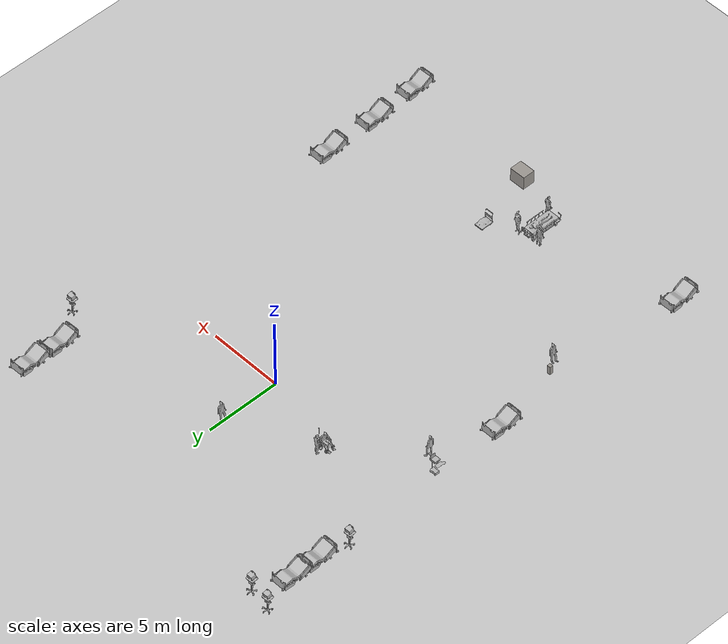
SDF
<sdf version="1.6">
 <world name="default">
  <plugin filename="gz-sim-physics-system" name="gz::sim::systems::Physics"/>
  <plugin filename="gz-sim-user-commands-system" name="gz::sim::systems::UserCommands"/>
  <plugin filename="gz-sim-scene-broadcaster-system" name="gz::sim::systems::SceneBroadcaster"/>
  <plugin filename="gz-sim-contact-system" name="gz::sim::systems::Contact"/>
  <plugin filename="gz-sim-sensors-system" name="gz::sim::systems::Sensors">
   <render_engine>ogre</render_engine>
  </plugin>
  <gravity>0 0 -9.8</gravity>
  <physics default="0" name="default_physics" type="ode">
   <max_step_size>0.001</max_step_size>
   <real_time_factor>1</real_time_factor>
   <real_time_update_rate>1000</real_time_update_rate>
  </physics>
  <scene>
   <ambient>0.6 0.6 0.6 1</ambient>
   <background>0.4 0.4 0.4 1</background>
   <shadows>false</shadows>
   <grid>false</grid>
   <origin_visual>false</origin_visual>
  </scene>
  <include><uri>model://sun</uri></include>
  <include><uri>model://ground_plane</uri><pose>0 0 -0.1 0 -0 0</pose></include>
  <model name="CGMClassic_1">
   <include>
    <uri>model://CGMClassic</uri>
    <static>true</static>
    <pose>11.1777 -18.4129 0 0 0 -3.13719</pose>
   </include>
  </model>
  <model name="CGMClassic_2">
   <include>
    <uri>model://CGMClassic</uri>
    <static>true</static>
    <pose>11.1179 -14.6493 0 0 0 -3.13599</pose>
   </include>
  </model>
  <model name="Scrubs_1">
   <include><uri>model://Scrubs</uri><static>true</static><pose>-9.61916 -12.5112 0 0 0 -3.12353</pose></include>
  </model>
  <model name="Scrubs_2">
   <include><uri>model://Scrubs</uri><static>true</static><pose>0.054597 4.05849 0 0 -0 3.12413</pose></include>
  </model>
  <model name="PatientWheelChair_1">
   <include>
    <uri>model://PatientWheelChair</uri>
    <static>true</static>
    <pose>-5.46091 1.23577 0 0 0 -1.54828</pose>
   </include>
  </model>
  <model name="Scrubs_3">
   <include><uri>model://Scrubs</uri><static>true</static><pose>-5.38513 1.82526 0 0 0 -1.63757</pose></include>
  </model>
  <model name="CGMClassic_3">
   <include>
    <uri>model://CGMClassic</uri>
    <static>true</static>
    <pose>-11.2304 -21.1134 0 0 0 -3.11834</pose>
   </include>
  </model>
  <model name="CGMClassic_4">
   <include>
    <uri>model://CGMClassic</uri>
    <static>true</static>
    <pose>-11.0878 -7.00992 0 0 -0 3.1351</pose>
   </include>
  </model>
  <model name="CGMClassic_5">
   <include>
    <uri>model://CGMClassic</uri>
    <static>true</static>
    <pose>-11.0106 8.9505 -0.008203 -0.035019 -0.000392 3.13388</pose>
   </include>
  </model>
  <model name="CGMClassic_6">
   <include>
    <uri>model://CGMClassic</uri>
    <static>true</static>
    <pose>-11.025 7.10335 0 -0.035021 1.8e-05 -3.13762</pose>
   </include>
  </model>
  <model name="TrolleyBedPatient_1">
   <include>
    <uri>model://TrolleyBedPatient</uri>
    <static>true</static>
    <pose>-1.83202 -19.2612 0 0 -0 0</pose>
   </include>
  </model>
  <model name="Scrubs_4">
   <include><uri>model://Scrubs</uri><static>true</static><pose>-0.93616 -18.2252 0 0 -0 1.62572</pose></include>
  </model>
  <model name="Scrubs_5">
   <include>
    <uri>model://Scrubs</uri>
    <static>true</static>
    <pose>-2.66657 -18.3733 0 -0.002221 -0.006608 -1.24025</pose>
   </include>
  </model>
  <model name="CGMClassic_7">
   <include>
    <uri>model://CGMClassic</uri>
    <static>true</static>
    <pose>10.6166 9.06291 -0.008203 -0.03501 0.000885 -3.11285</pose>
   </include>
  </model>
  <model name="CGMClassic_8">
   <include>
    <uri>model://CGMClassic</uri>
    <static>true</static>
    <pose>10.6006 6.90956 -0.008203 -0.035003 0.001133 -3.10576</pose>
   </include>
  </model>
  <model name="ParkingTrolleyMin_1">
   <include>
    <uri>model://ParkingTrolleyMin</uri>
    <static>true</static>
    <pose>0.715846 -17.1496 -0.000121 -1e-06 -0 0</pose>
   </include>
  </model>
  <model name="Scrubs_6">
   <include><uri>model://Scrubs</uri><static>true</static><pose>-1.29468 -20.4093 0 0 0 -1.51066</pose></include>
  </model>
  <model name="CGMClassic_9">
   <include>
    <uri>model://CGMClassic</uri>
    <static>true</static>
    <pose>11.3613 -21.8867 0 0 0 -3.12292</pose>
   </include>
  </model>
  <model name="XRayMachine_1">
   <include><uri>model://XRayMachine</uri><static>true</static><pose>1.79424 -21.3329 0 0 -0 0</pose></include>
  </model>
  <model name="BloodPressureMonitor_1">
   <include>
    <uri>model://BloodPressureMonitor</uri>
    <static>true</static>
    <pose>-9.96258 -11.9361 0 0 -0 0</pose>
   </include>
  </model>
  <model name="BMWCart_1">
   <include><uri>model://BMWCart</uri><static>true</static><pose>-10.931 -1.9483 0 0 -0 0</pose></include>
  </model>
  <model name="Scrubs_7">
   <include><uri>model://Scrubs</uri><static>true</static><pose>-9.75875 -2.67552 0 0 -0 0</pose></include>
  </model>
  <model name="BPCart_1">
   <include>
    <uri>model://BPCart</uri>
    <static>true</static>
    <pose>-10.1788 11.173 0.003446 1e-06 -0 0.003096</pose>
   </include>
  </model>
  <model name="BPCart_2">
   <include><uri>model://BPCart</uri><static>true</static><pose>12.0072 4.64765 0 0 -0 0</pose></include>
  </model>
  <model name="BPCart_3">
   <include><uri>model://BPCart</uri><static>true</static><pose>-11.7236 11.4294 0 0 -0 0</pose></include>
  </model>
  <model name="BPCart_4">
   <include>
    <uri>model://BPCart</uri>
    <static>true</static>
    <pose>-11.4703 5.05999 0.003446 1e-06 -0 0.003096</pose>
   </include>
  </model>
 </world>
</sdf>

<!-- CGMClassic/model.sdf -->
<sdf version="1.6">
  <model name="CGMClassic">
   <static>true</static>
    <link name="body">
      <pose>0 0 0 0 0 0</pose>

      <visual name="visual">
        <geometry>
          <mesh>
            <uri>model://CGMClassic/meshes/CGMClassic.obj</uri>
            <scale>0.01 0.01 0.01</scale>
          </mesh>
        </geometry>
      </visual>

      <collision name="collision">
        <geometry>
          <mesh>
            <uri>model://CGMClassic/meshes/CGMClassic.obj</uri>
            <scale>0.01 0.01 0.01</scale>
          </mesh>
        </geometry>
      </collision>

    </link>
  </model>
</sdf>

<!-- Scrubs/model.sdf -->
<sdf version="1.6">
  <model name='Scrubs'>
   <static>true</static>
    <link name="body">
      <pose>0 0 0 0 0 0</pose>

      <visual name="visual">
        <geometry>
          <mesh>
            <uri>model://Scrubs/meshes/scrubs.obj</uri>
          </mesh>
        </geometry>
      </visual>

      <collision name="collision">
        <geometry>
          <mesh>
            <uri>model://Scrubs/meshes/Scrubs_Col.obj</uri>
          </mesh>
        </geometry>
      </collision>

    </link>
  </model>
</sdf>

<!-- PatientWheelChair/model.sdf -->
<sdf version="1.6">
  <model name="PatientWheelChair">
   <static>true</static>
    <link name="body">
      <pose>0 0 0 0 0 0</pose>

      <visual name="visual">
        <geometry>
          <mesh>
            <uri>model://PatientWheelChair/meshes/PatientWheelChair.obj</uri>
          </mesh>
        </geometry>
      </visual>

      <collision name="collision">
        <geometry>
          <mesh>
            <uri>model://PatientWheelChair/meshes/PatientWheelChair_Col.obj</uri>
          </mesh>
        </geometry>
      </collision>

    </link>
  </model>
</sdf>

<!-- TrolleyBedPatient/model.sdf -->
<sdf version="1.6">
  <model name="TrolleyBedPatient">
   <static>true</static>
    <link name="body">
      <pose>0 0 0 0 0 0</pose>

      <visual name="visual">
        <geometry>
          <mesh>
            <uri>model://TrolleyBedPatient/meshes/TrolleyBedPatient.obj</uri>
          </mesh>
        </geometry>
      </visual>

      <collision name="collision">
        <geometry>
          <mesh>
            <uri>model://TrolleyBedPatient/meshes/TrolleyBedPatient.obj</uri>
          </mesh>
        </geometry>
      </collision>

    </link>
  </model>
</sdf>

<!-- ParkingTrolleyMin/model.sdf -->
<sdf version="1.6">
  <model name="ParkingTrolleyMin">
    <link name="body">
      <pose>0 0 0 0 0 0</pose>

        <visual name="visual">
          <pose>0 0 0 0 0 0</pose>
          <geometry>
            <mesh><uri>model://ParkingTrolleyMin/meshes/trolleymin.obj</uri></mesh>
          </geometry>
        </visual>

        <collision name="collision">
          <pose>0 0 0 0 0 0</pose>
          <geometry>
            <mesh><uri>model://ParkingTrolleyMin/meshes/trolleymin.obj</uri></mesh>
          </geometry>
        </collision>

    </link>
  </model>
</sdf>

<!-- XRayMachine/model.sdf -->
<sdf version="1.6">
  <model name="XRayMachine">
    <static>true</static>
    <link name="link">
      <collision name="col">
        <geometry>
          <box>
            <size>1.1 0.85 1.65</size>
          </box>
        </geometry>
      </collision>
      <visual name="vis">
        <geometry>
          <box>
            <size>1.1 0.85 1.65</size>
          </box>
        </geometry>
        <material>
          <ambient>0.62 0.6 0.58 1</ambient>
          <diffuse>0.62 0.6 0.58 1</diffuse>
        </material>
      </visual>
    </link>
  </model>
</sdf>

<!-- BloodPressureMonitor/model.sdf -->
<sdf version="1.6">
  <model name="BloodPressureMonitor">
    <static>true</static>
    <link name="link">
      <collision name="col">
        <geometry>
          <box>
            <size>0.25 0.22 0.95</size>
          </box>
        </geometry>
      </collision>
      <visual name="vis">
        <geometry>
          <box>
            <size>0.25 0.22 0.95</size>
          </box>
        </geometry>
        <material>
          <ambient>0.62 0.6 0.58 1</ambient>
          <diffuse>0.62 0.6 0.58 1</diffuse>
        </material>
      </visual>
    </link>
  </model>
</sdf>

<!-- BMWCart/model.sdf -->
<sdf version="1.6">
  <model name='BMWCart'>
    <link name="body">
      <pose>0 0 0 0 0 0</pose>

      <visual name="visual">
        <geometry>
          <mesh>
            <uri>model://BMWCart/meshes/Cart_BMW.obj</uri>
          </mesh>
        </geometry>
      </visual>

      <collision name="collision">
        <geometry>
          <mesh>
            <uri>model://BMWCart/meshes/Cart_BMW_Col.obj</uri>
          </mesh>
        </geometry>
      </collision>

    </link>
  </model>
</sdf>

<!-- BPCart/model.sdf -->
<sdf version="1.6">
  <model name='BPCart'>
    <link name="body">
      <pose>0 0 0 0 0 0</pose>

      <visual name="visual">
        <geometry>
          <mesh>
            <uri>model://BPCart/meshes/Cart_BP.obj</uri>
          </mesh>
        </geometry>
      </visual>

      <collision name="collision">
        <geometry>
          <mesh>
            <uri>model://BPCart/meshes/Cart_BP_Col.obj</uri>
          </mesh>
        </geometry>
      </collision>

    </link>
  </model>
</sdf>
